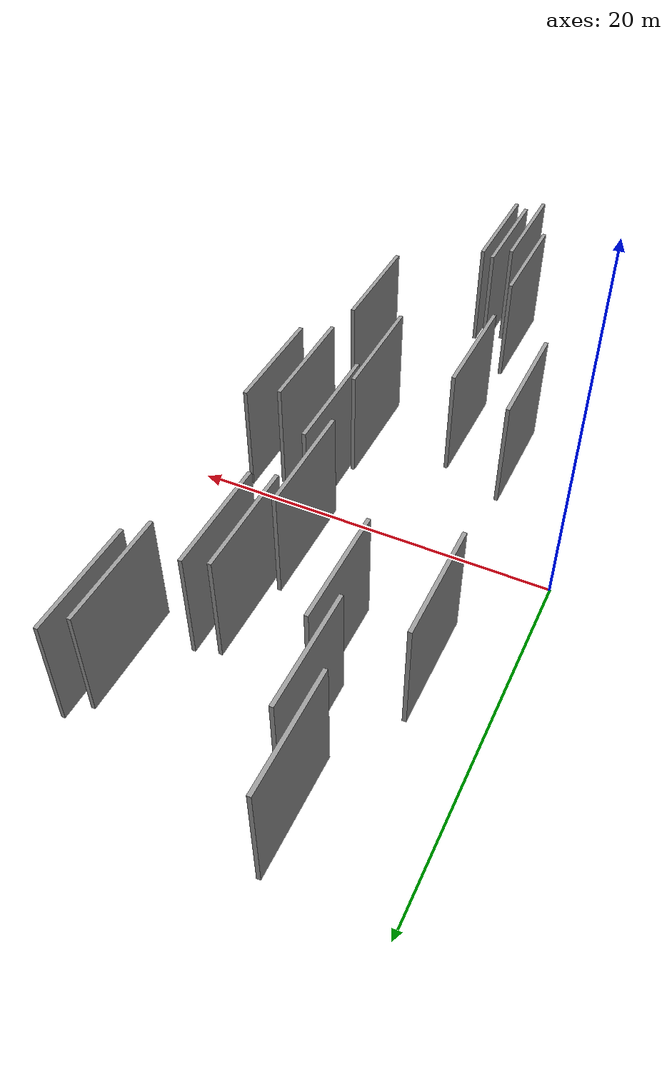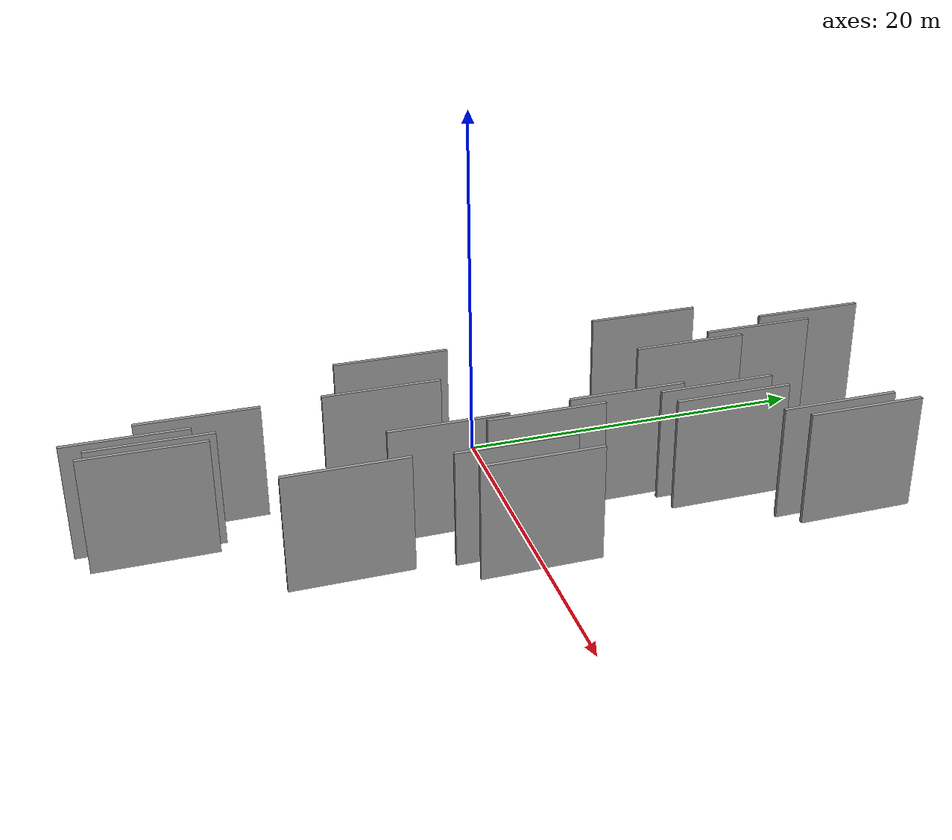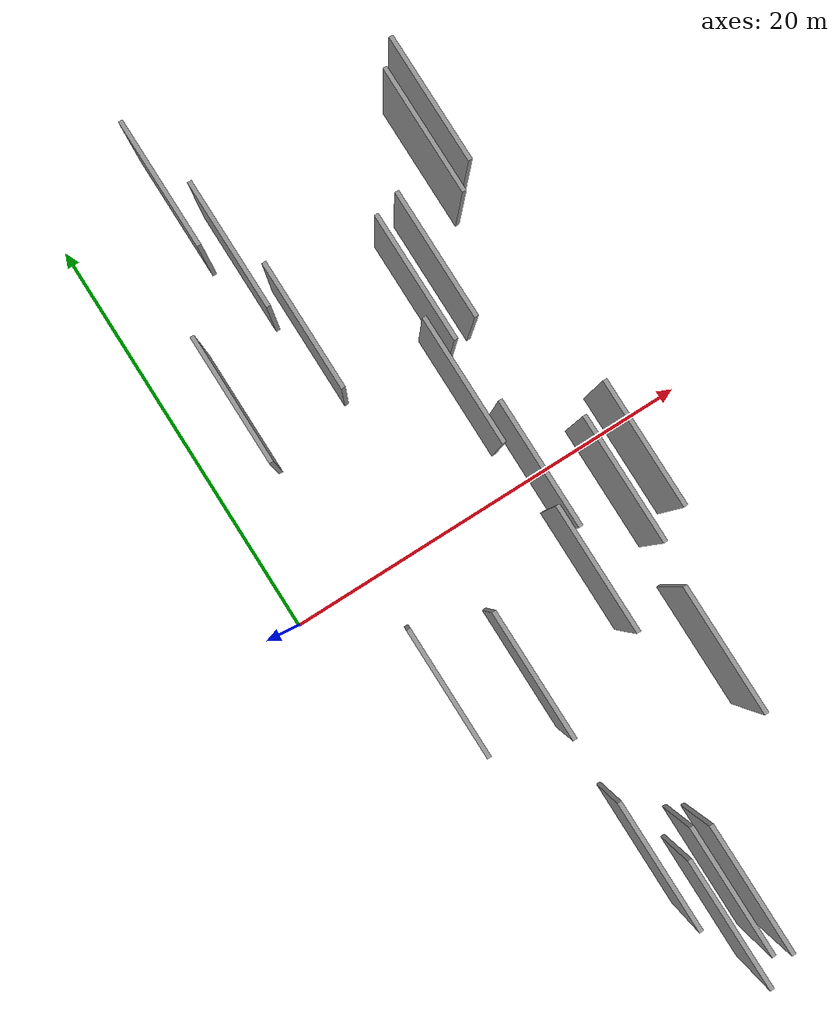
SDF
<sdf version="1.6">
 <world name="default">
  <scene>
   <sky><clouds><speed>12</speed></clouds></sky>
   <ambient>0.4 0.4 0.4 1</ambient>
   <background>0.7 0.7 0.7 1</background>
   <shadows>1</shadows>
  </scene>
  <gravity>0 0 -9.8066</gravity>
  <magnetic_field>6e-06 2.3e-05 -4.2e-05</magnetic_field>
  <physics default="0" name="default_physics" type="ode">
   <ode>
    <solver>
     <type>quick</type>
     <iters>10</iters>
     <sor>1.0</sor>
     <use_dynamic_moi_rescaling>0</use_dynamic_moi_rescaling>
    </solver>
    <constraints>
     <cfm>0</cfm>
     <erp>0.2</erp>
     <contact_max_correcting_vel>100</contact_max_correcting_vel>
     <contact_surface_layer>0.001</contact_surface_layer>
    </constraints>
   </ode>
   <max_step_size>0.004</max_step_size>
   <real_time_factor>1</real_time_factor>
   <real_time_update_rate>250</real_time_update_rate>
  </physics>
  <light name="sun" type="directional">
   <pose>0 0 10 0 0 0</pose>
   <diffuse>0.8 0.8 0.8 1</diffuse>
   <specular>0.2 0.2 0.2 1</specular>
   <attenuation>
    <range>1000</range>
    <constant>0.9</constant>
    <linear>0.01</linear>
    <quadratic>0.001</quadratic>
   </attenuation>
   <direction>-0.5 0.1 -0.9</direction>
  </light>
  <model name="grey_wall_1">
   <static>1</static>
   <pose>7.0231 10.0209 2.5 0.000000 0.000000 1.570796</pose>
   <link name="link">
    <pose>0 0 3.00 0 0 0</pose>
    <collision name="collision"><geometry><box><size>6.00 0.2 6.00</size></box></geometry></collision>
    <visual name="visual">
     <cast_shadows>0</cast_shadows>
     <geometry><box><size>6.00 0.2 6.00</size></box></geometry>
     <material>
      <script>
       <uri>model://grey_wall/materials/scripts</uri>
       <uri>model://grey_wall/materials/textures</uri>
       <name>vrc/grey_wall</name>
      </script>
     </material>
    </visual>
   </link>
  </model>
  <model name="grey_wall_2">
   <static>1</static>
   <pose>7.4651 -15.7052 2.5 0.000000 0.000000 1.570796</pose>
   <link name="link">
    <pose>0 0 3.00 0 0 0</pose>
    <collision name="collision"><geometry><box><size>6.00 0.2 6.00</size></box></geometry></collision>
    <visual name="visual">
     <cast_shadows>0</cast_shadows>
     <geometry><box><size>6.00 0.2 6.00</size></box></geometry>
     <material>
      <script>
       <uri>model://grey_wall/materials/scripts</uri>
       <uri>model://grey_wall/materials/textures</uri>
       <name>vrc/grey_wall</name>
      </script>
     </material>
    </visual>
   </link>
  </model>
  <model name="grey_wall_3">
   <static>1</static>
   <pose>14.2859 -9.9177 2.5 0.000000 0.000000 1.570796</pose>
   <link name="link">
    <pose>0 0 3.00 0 0 0</pose>
    <collision name="collision"><geometry><box><size>6.00 0.2 6.00</size></box></geometry></collision>
    <visual name="visual">
     <cast_shadows>0</cast_shadows>
     <geometry><box><size>6.00 0.2 6.00</size></box></geometry>
     <material>
      <script>
       <uri>model://grey_wall/materials/scripts</uri>
       <uri>model://grey_wall/materials/textures</uri>
       <name>vrc/grey_wall</name>
      </script>
     </material>
    </visual>
   </link>
  </model>
  <model name="grey_wall_4">
   <static>1</static>
   <pose>10.0547 -18.4060 2.5 0.000000 0.000000 1.570796</pose>
   <link name="link">
    <pose>0 0 3.00 0 0 0</pose>
    <collision name="collision"><geometry><box><size>6.00 0.2 6.00</size></box></geometry></collision>
    <visual name="visual">
     <cast_shadows>0</cast_shadows>
     <geometry><box><size>6.00 0.2 6.00</size></box></geometry>
     <material>
      <script>
       <uri>model://grey_wall/materials/scripts</uri>
       <uri>model://grey_wall/materials/textures</uri>
       <name>vrc/grey_wall</name>
      </script>
     </material>
    </visual>
   </link>
  </model>
  <model name="grey_wall_5">
   <static>1</static>
   <pose>11.7387 -4.5023 2.5 0.000000 0.000000 1.570796</pose>
   <link name="link">
    <pose>0 0 3.00 0 0 0</pose>
    <collision name="collision"><geometry><box><size>6.00 0.2 6.00</size></box></geometry></collision>
    <visual name="visual">
     <cast_shadows>0</cast_shadows>
     <geometry><box><size>6.00 0.2 6.00</size></box></geometry>
     <material>
      <script>
       <uri>model://grey_wall/materials/scripts</uri>
       <uri>model://grey_wall/materials/textures</uri>
       <name>vrc/grey_wall</name>
      </script>
     </material>
    </visual>
   </link>
  </model>
  <model name="grey_wall_6">
   <static>1</static>
   <pose>7.3158 -6.7180 2.5 0.000000 0.000000 1.570796</pose>
   <link name="link">
    <pose>0 0 3.00 0 0 0</pose>
    <collision name="collision"><geometry><box><size>6.00 0.2 6.00</size></box></geometry></collision>
    <visual name="visual">
     <cast_shadows>0</cast_shadows>
     <geometry><box><size>6.00 0.2 6.00</size></box></geometry>
     <material>
      <script>
       <uri>model://grey_wall/materials/scripts</uri>
       <uri>model://grey_wall/materials/textures</uri>
       <name>vrc/grey_wall</name>
      </script>
     </material>
    </visual>
   </link>
  </model>
  <model name="grey_wall_7">
   <static>1</static>
   <pose>16.0423 -1.2804 2.5 0.000000 0.000000 1.570796</pose>
   <link name="link">
    <pose>0 0 3.00 0 0 0</pose>
    <collision name="collision"><geometry><box><size>6.00 0.2 6.00</size></box></geometry></collision>
    <visual name="visual">
     <cast_shadows>0</cast_shadows>
     <geometry><box><size>6.00 0.2 6.00</size></box></geometry>
     <material>
      <script>
       <uri>model://grey_wall/materials/scripts</uri>
       <uri>model://grey_wall/materials/textures</uri>
       <name>vrc/grey_wall</name>
      </script>
     </material>
    </visual>
   </link>
  </model>
  <model name="grey_wall_8">
   <static>1</static>
   <pose>3.0010 9.0312 2.5 0.000000 0.000000 1.570796</pose>
   <link name="link">
    <pose>0 0 3.00 0 0 0</pose>
    <collision name="collision"><geometry><box><size>6.00 0.2 6.00</size></box></geometry></collision>
    <visual name="visual">
     <cast_shadows>0</cast_shadows>
     <geometry><box><size>6.00 0.2 6.00</size></box></geometry>
     <material>
      <script>
       <uri>model://grey_wall/materials/scripts</uri>
       <uri>model://grey_wall/materials/textures</uri>
       <name>vrc/grey_wall</name>
      </script>
     </material>
    </visual>
   </link>
  </model>
  <model name="grey_wall_9">
   <static>1</static>
   <pose>8.5928 -19.0831 2.5 0.000000 0.000000 1.570796</pose>
   <link name="link">
    <pose>0 0 3.00 0 0 0</pose>
    <collision name="collision"><geometry><box><size>6.00 0.2 6.00</size></box></geometry></collision>
    <visual name="visual">
     <cast_shadows>0</cast_shadows>
     <geometry><box><size>6.00 0.2 6.00</size></box></geometry>
     <material>
      <script>
       <uri>model://grey_wall/materials/scripts</uri>
       <uri>model://grey_wall/materials/textures</uri>
       <name>vrc/grey_wall</name>
      </script>
     </material>
    </visual>
   </link>
  </model>
  <model name="grey_wall_10">
   <static>1</static>
   <pose>11.2848 4.7194 2.5 0.000000 0.000000 1.570796</pose>
   <link name="link">
    <pose>0 0 3.00 0 0 0</pose>
    <collision name="collision"><geometry><box><size>6.00 0.2 6.00</size></box></geometry></collision>
    <visual name="visual">
     <cast_shadows>0</cast_shadows>
     <geometry><box><size>6.00 0.2 6.00</size></box></geometry>
     <material>
      <script>
       <uri>model://grey_wall/materials/scripts</uri>
       <uri>model://grey_wall/materials/textures</uri>
       <name>vrc/grey_wall</name>
      </script>
     </material>
    </visual>
   </link>
  </model>
  <model name="grey_wall_11">
   <static>1</static>
   <pose>9.3574 -18.0366 2.5 0.000000 0.000000 1.570796</pose>
   <link name="link">
    <pose>0 0 3.00 0 0 0</pose>
    <collision name="collision"><geometry><box><size>6.00 0.2 6.00</size></box></geometry></collision>
    <visual name="visual">
     <cast_shadows>0</cast_shadows>
     <geometry><box><size>6.00 0.2 6.00</size></box></geometry>
     <material>
      <script>
       <uri>model://grey_wall/materials/scripts</uri>
       <uri>model://grey_wall/materials/textures</uri>
       <name>vrc/grey_wall</name>
      </script>
     </material>
    </visual>
   </link>
  </model>
  <model name="grey_wall_12">
   <static>1</static>
   <pose>13.0757 9.6037 2.5 0.000000 0.000000 1.570796</pose>
   <link name="link">
    <pose>0 0 3.00 0 0 0</pose>
    <collision name="collision"><geometry><box><size>6.00 0.2 6.00</size></box></geometry></collision>
    <visual name="visual">
     <cast_shadows>0</cast_shadows>
     <geometry><box><size>6.00 0.2 6.00</size></box></geometry>
     <material>
      <script>
       <uri>model://grey_wall/materials/scripts</uri>
       <uri>model://grey_wall/materials/textures</uri>
       <name>vrc/grey_wall</name>
      </script>
     </material>
    </visual>
   </link>
  </model>
  <model name="grey_wall_13">
   <static>1</static>
   <pose>16.2721 15.0955 2.5 0.000000 0.000000 1.570796</pose>
   <link name="link">
    <pose>0 0 3.00 0 0 0</pose>
    <collision name="collision"><geometry><box><size>6.00 0.2 6.00</size></box></geometry></collision>
    <visual name="visual">
     <cast_shadows>0</cast_shadows>
     <geometry><box><size>6.00 0.2 6.00</size></box></geometry>
     <material>
      <script>
       <uri>model://grey_wall/materials/scripts</uri>
       <uri>model://grey_wall/materials/textures</uri>
       <name>vrc/grey_wall</name>
      </script>
     </material>
    </visual>
   </link>
  </model>
  <model name="grey_wall_14">
   <static>1</static>
   <pose>14.5871 -2.0545 2.5 0.000000 0.000000 1.570796</pose>
   <link name="link">
    <pose>0 0 3.00 0 0 0</pose>
    <collision name="collision"><geometry><box><size>6.00 0.2 6.00</size></box></geometry></collision>
    <visual name="visual">
     <cast_shadows>0</cast_shadows>
     <geometry><box><size>6.00 0.2 6.00</size></box></geometry>
     <material>
      <script>
       <uri>model://grey_wall/materials/scripts</uri>
       <uri>model://grey_wall/materials/textures</uri>
       <name>vrc/grey_wall</name>
      </script>
     </material>
    </visual>
   </link>
  </model>
  <model name="grey_wall_15">
   <static>1</static>
   <pose>15.3826 14.1487 2.5 0.000000 0.000000 1.570796</pose>
   <link name="link">
    <pose>0 0 3.00 0 0 0</pose>
    <collision name="collision"><geometry><box><size>6.00 0.2 6.00</size></box></geometry></collision>
    <visual name="visual">
     <cast_shadows>0</cast_shadows>
     <geometry><box><size>6.00 0.2 6.00</size></box></geometry>
     <material>
      <script>
       <uri>model://grey_wall/materials/scripts</uri>
       <uri>model://grey_wall/materials/textures</uri>
       <name>vrc/grey_wall</name>
      </script>
     </material>
    </visual>
   </link>
  </model>
  <model name="grey_wall_16">
   <static>1</static>
   <pose>12.0683 0.2713 2.5 0.000000 0.000000 1.570796</pose>
   <link name="link">
    <pose>0 0 3.00 0 0 0</pose>
    <collision name="collision"><geometry><box><size>6.00 0.2 6.00</size></box></geometry></collision>
    <visual name="visual">
     <cast_shadows>0</cast_shadows>
     <geometry><box><size>6.00 0.2 6.00</size></box></geometry>
     <material>
      <script>
       <uri>model://grey_wall/materials/scripts</uri>
       <uri>model://grey_wall/materials/textures</uri>
       <name>vrc/grey_wall</name>
      </script>
     </material>
    </visual>
   </link>
  </model>
  <model name="grey_wall_17">
   <static>1</static>
   <pose>4.0643 -5.5037 2.5 0.000000 0.000000 1.570796</pose>
   <link name="link">
    <pose>0 0 3.00 0 0 0</pose>
    <collision name="collision"><geometry><box><size>6.00 0.2 6.00</size></box></geometry></collision>
    <visual name="visual">
     <cast_shadows>0</cast_shadows>
     <geometry><box><size>6.00 0.2 6.00</size></box></geometry>
     <material>
      <script>
       <uri>model://grey_wall/materials/scripts</uri>
       <uri>model://grey_wall/materials/textures</uri>
       <name>vrc/grey_wall</name>
      </script>
     </material>
    </visual>
   </link>
  </model>
  <model name="grey_wall_18">
   <static>1</static>
   <pose>6.2353 14.4072 2.5 0.000000 0.000000 1.570796</pose>
   <link name="link">
    <pose>0 0 3.00 0 0 0</pose>
    <collision name="collision"><geometry><box><size>6.00 0.2 6.00</size></box></geometry></collision>
    <visual name="visual">
     <cast_shadows>0</cast_shadows>
     <geometry><box><size>6.00 0.2 6.00</size></box></geometry>
     <material>
      <script>
       <uri>model://grey_wall/materials/scripts</uri>
       <uri>model://grey_wall/materials/textures</uri>
       <name>vrc/grey_wall</name>
      </script>
     </material>
    </visual>
   </link>
  </model>
  <model name="grey_wall_19">
   <static>1</static>
   <pose>11.8815 9.2583 2.5 0.000000 0.000000 1.570796</pose>
   <link name="link">
    <pose>0 0 3.00 0 0 0</pose>
    <collision name="collision"><geometry><box><size>6.00 0.2 6.00</size></box></geometry></collision>
    <visual name="visual">
     <cast_shadows>0</cast_shadows>
     <geometry><box><size>6.00 0.2 6.00</size></box></geometry>
     <material>
      <script>
       <uri>model://grey_wall/materials/scripts</uri>
       <uri>model://grey_wall/materials/textures</uri>
       <name>vrc/grey_wall</name>
      </script>
     </material>
    </visual>
   </link>
  </model>
  <model name="grey_wall_20">
   <static>1</static>
   <pose>5.1890 17.9859 2.5 0.000000 0.000000 1.570796</pose>
   <link name="link">
    <pose>0 0 3.00 0 0 0</pose>
    <collision name="collision"><geometry><box><size>6.00 0.2 6.00</size></box></geometry></collision>
    <visual name="visual">
     <cast_shadows>0</cast_shadows>
     <geometry><box><size>6.00 0.2 6.00</size></box></geometry>
     <material>
      <script>
       <uri>model://grey_wall/materials/scripts</uri>
       <uri>model://grey_wall/materials/textures</uri>
       <name>vrc/grey_wall</name>
      </script>
     </material>
    </visual>
   </link>
  </model>
 </world>
</sdf>
